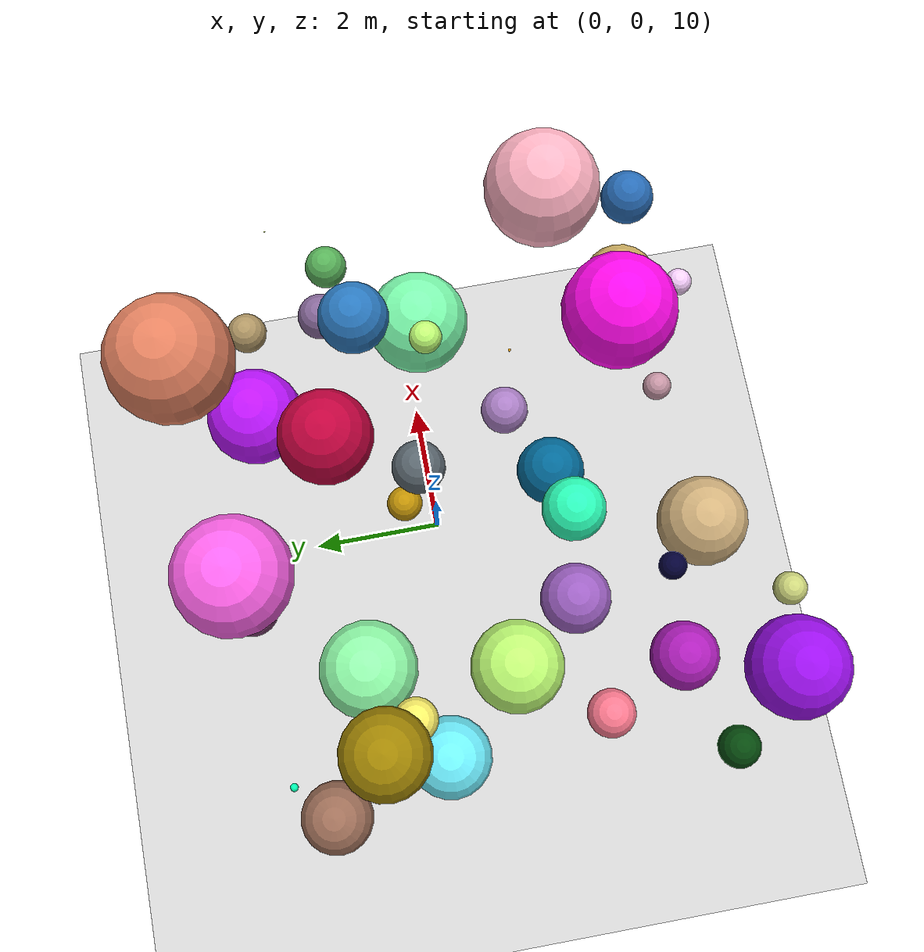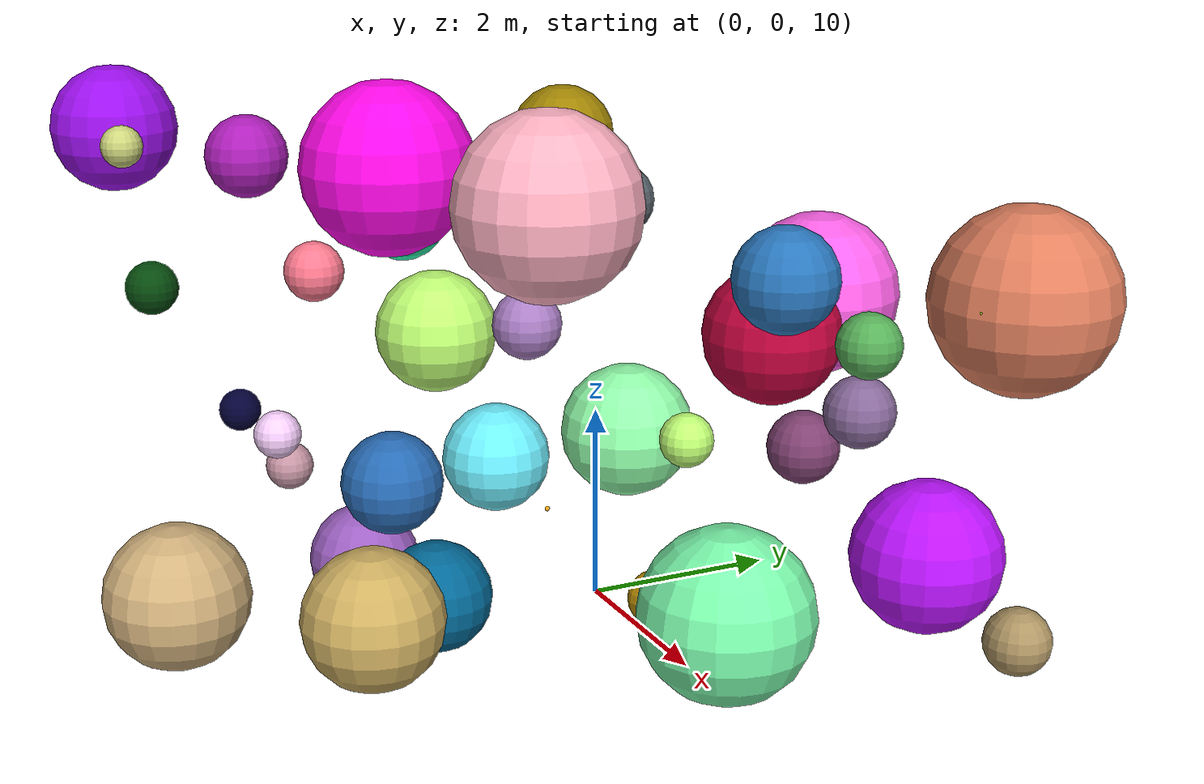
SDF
<sdf version="1.6">
 <world name="default">
  <model name="ball_32">
   <allow_auto_disable>0</allow_auto_disable>
   <link name="link">
    <collision name="collision">
     <geometry><sphere><radius>0.707745540641</radius></sphere></geometry>
     <max_contacts>20</max_contacts>
     <surface>
      <contact><ode><max_vel>10.0</max_vel></ode></contact>
      <bounce><threshold>0.0</threshold><restitution_coefficient>1.0</restitution_coefficient></bounce>
     </surface>
    </collision>
    <visual name="visual">
     <geometry><sphere><radius>0.707745540641</radius></sphere></geometry>
     <material>
      <diffuse>0.745098 0.00392157 0.235294 1</diffuse>
      <ambient>0.745098 0.00392157 0.235294 1</ambient>
     </material>
     <transparency>0.0</transparency>
    </visual>
    <inertial>
     <mass>0.758850604483</mass>
     <inertia>
      <ixz>0.0</ixz>
      <ixx>0.15204444548</ixx>
      <ixy>0.0</ixy>
      <izz>0.15204444548</izz>
      <iyy>0.15204444548</iyy>
      <iyz>0.0</iyz>
     </inertia>
    </inertial>
   </link>
   <pose>1.04656 1.43452 12.9102 0 -0 0</pose>
   <static>0</static>
  </model>
  <model name="ball_30">
   <allow_auto_disable>0</allow_auto_disable>
   <link name="link">
    <collision name="collision">
     <geometry><sphere><radius>0.553668750936</radius></sphere></geometry>
     <max_contacts>20</max_contacts>
     <surface>
      <contact><ode><max_vel>10.0</max_vel></ode></contact>
      <bounce><threshold>0.0</threshold><restitution_coefficient>1.0</restitution_coefficient></bounce>
     </surface>
    </collision>
    <visual name="visual">
     <geometry><sphere><radius>0.553668750936</radius></sphere></geometry>
     <material>
      <diffuse>0.00392157 0.403922 0.584314 1</diffuse>
      <ambient>0.00392157 0.403922 0.584314 1</ambient>
     </material>
     <transparency>0.0</transparency>
    </visual>
    <inertial>
     <mass>0.915317315301</mass>
     <inertia>
      <ixz>0.0</ixz>
      <ixx>0.112235874475</ixx>
      <ixy>0.0</ixy>
      <izz>0.112235874475</izz>
      <iyy>0.112235874475</iyy>
      <iyz>0.0</iyz>
     </inertia>
    </inertial>
   </link>
   <pose>0.479768 -1.97249 10.495 0 -0 0</pose>
   <static>0</static>
  </model>
  <model name="ball_31">
   <allow_auto_disable>0</allow_auto_disable>
   <link name="link">
    <collision name="collision">
     <geometry><sphere><radius>0.298899834104</radius></sphere></geometry>
     <max_contacts>20</max_contacts>
     <surface>
      <contact><ode><max_vel>10.0</max_vel></ode></contact>
      <bounce><threshold>0.0</threshold><restitution_coefficient>1.0</restitution_coefficient></bounce>
     </surface>
    </collision>
    <visual name="visual">
     <geometry><sphere><radius>0.298899834104</radius></sphere></geometry>
     <material>
      <diffuse>0.337255 0.682353 0.341176 1</diffuse>
      <ambient>0.337255 0.682353 0.341176 1</ambient>
     </material>
     <transparency>0.0</transparency>
    </visual>
    <inertial>
     <mass>0.997384573659</mass>
     <inertia>
      <ixz>0.0</ixz>
      <ixx>0.0356429782931</ixx>
      <ixy>0.0</ixy>
      <izz>0.0356429782931</izz>
      <iyy>0.0356429782931</iyy>
      <iyz>0.0</iyz>
     </inertia>
    </inertial>
   </link>
   <pose>3.39642 0.994318 13.4538 0 -0 0</pose>
   <static>0</static>
  </model>
  <model name="ball_18">
   <allow_auto_disable>0</allow_auto_disable>
   <link name="link">
    <collision name="collision">
     <geometry><sphere><radius>0.766750803271</radius></sphere></geometry>
     <max_contacts>20</max_contacts>
     <surface>
      <contact><ode><max_vel>10.0</max_vel></ode></contact>
      <bounce><threshold>0.0</threshold><restitution_coefficient>1.0</restitution_coefficient></bounce>
     </surface>
    </collision>
    <visual name="visual">
     <geometry><sphere><radius>0.766750803271</radius></sphere></geometry>
     <material><diffuse>1 0.0313725 0.909804 1</diffuse><ambient>1 0.0313725 0.909804 1</ambient></material>
     <transparency>0.0</transparency>
    </visual>
    <inertial>
     <mass>0.989809601818</mass>
     <inertia>
      <ixz>0.0</ixz>
      <ixx>0.232766315995</ixx>
      <ixy>0.0</ixy>
      <izz>0.232766315995</izz>
      <iyy>0.232766315995</iyy>
      <iyz>0.0</iyz>
     </inertia>
    </inertial>
   </link>
   <pose>1.46713 -2.72367 14.9956 0 -0 0</pose>
   <static>0</static>
  </model>
  <model name="ball_19">
   <allow_auto_disable>0</allow_auto_disable>
   <link name="link">
    <collision name="collision">
     <geometry><sphere><radius>0.0113179067498</radius></sphere></geometry>
     <max_contacts>20</max_contacts>
     <surface>
      <contact><ode><max_vel>10.0</max_vel></ode></contact>
      <bounce><threshold>0.0</threshold><restitution_coefficient>1.0</restitution_coefficient></bounce>
     </surface>
    </collision>
    <visual name="visual">
     <geometry><sphere><radius>0.0113179067498</radius></sphere></geometry>
     <material>
      <diffuse>0.690196 0.866667 0.0862745 1</diffuse>
      <ambient>0.690196 0.866667 0.0862745 1</ambient>
     </material>
     <transparency>0.0</transparency>
    </visual>
    <inertial>
     <mass>0.872707984319</mass>
     <inertia>
      <ixz>0.0</ixz>
      <ixx>4.47158163077e-05</ixx>
      <ixy>0.0</ixy>
      <izz>4.47158163077e-05</izz>
      <iyy>4.47158163077e-05</iyy>
      <iyz>0.0</iyz>
     </inertia>
    </inertial>
   </link>
   <pose>3.93957 1.75611 13.7899 0 -0 0</pose>
   <static>0</static>
  </model>
  <model name="ball_34">
   <allow_auto_disable>0</allow_auto_disable>
   <link name="link">
    <collision name="collision">
     <geometry><sphere><radius>0.68623115207</radius></sphere></geometry>
     <max_contacts>20</max_contacts>
     <surface>
      <contact><ode><max_vel>10.0</max_vel></ode></contact>
      <bounce><threshold>0.0</threshold><restitution_coefficient>1.0</restitution_coefficient></bounce>
     </surface>
    </collision>
    <visual name="visual">
     <geometry><sphere><radius>0.68623115207</radius></sphere></geometry>
     <material>
      <diffuse>0.745098 0.992157 0.45098 1</diffuse>
      <ambient>0.745098 0.992157 0.45098 1</ambient>
     </material>
     <transparency>0.0</transparency>
    </visual>
    <inertial>
     <mass>0.475504896456</mass>
     <inertia>
      <ixz>0.0</ixz>
      <ixx>0.0895686118346</ixx>
      <ixy>0.0</ixy>
      <izz>0.0895686118346</izz>
      <iyy>0.0895686118346</iyy>
      <iyz>0.0</iyz>
     </inertia>
    </inertial>
   </link>
   <pose>-2.65389 -0.717581 12.2684 0 -0 0</pose>
   <static>0</static>
  </model>
  <model name="ball_35">
   <allow_auto_disable>0</allow_auto_disable>
   <link name="link">
    <collision name="collision">
     <geometry><sphere><radius>0.781675663537</radius></sphere></geometry>
     <max_contacts>20</max_contacts>
     <surface>
      <contact><ode><max_vel>10.0</max_vel></ode></contact>
      <bounce><threshold>0.0</threshold><restitution_coefficient>1.0</restitution_coefficient></bounce>
     </surface>
    </collision>
    <visual name="visual">
     <geometry><sphere><radius>0.781675663537</radius></sphere></geometry>
     <material>
      <diffuse>0.737255 0.0745098 0.996078 1</diffuse>
      <ambient>0.737255 0.0745098 0.996078 1</ambient>
     </material>
     <transparency>0.0</transparency>
    </visual>
    <inertial>
     <mass>0.00483779798271</mass>
     <inertia>
      <ixz>0.0</ixz>
      <ixx>0.00118239042012</ixx>
      <ixy>0.0</ixy>
      <izz>0.00118239042012</izz>
      <iyy>0.00118239042012</iyy>
      <iyz>0.0</iyz>
     </inertia>
    </inertial>
   </link>
   <pose>2.18048 2.62688 10.7471 0 -0 0</pose>
   <static>0</static>
  </model>
  <model name="ball_36">
   <allow_auto_disable>0</allow_auto_disable>
   <link name="link">
    <collision name="collision">
     <geometry><sphere><radius>0.0218173294683</radius></sphere></geometry>
     <max_contacts>20</max_contacts>
     <surface>
      <contact><ode><max_vel>10.0</max_vel></ode></contact>
      <bounce><threshold>0.0</threshold><restitution_coefficient>1.0</restitution_coefficient></bounce>
     </surface>
    </collision>
    <visual name="visual">
     <geometry><sphere><radius>0.0218173294683</radius></sphere></geometry>
     <material><diffuse>1 0.670588 0.0588235 1</diffuse><ambient>1 0.670588 0.0588235 1</ambient></material>
     <transparency>0.0</transparency>
    </visual>
    <inertial>
     <mass>0.720488345056</mass>
     <inertia>
      <ixz>0.0</ixz>
      <ixx>0.000137179789248</ixx>
      <ixy>0.0</ixy>
      <izz>0.000137179789248</izz>
      <iyy>0.000137179789248</iyy>
      <iyz>0.0</iyz>
     </inertia>
    </inertial>
   </link>
   <pose>2.1719 -1.54456 11.9261 0 -0 0</pose>
   <static>0</static>
  </model>
  <model name="ball_37">
   <allow_auto_disable>0</allow_auto_disable>
   <link name="link">
    <collision name="collision">
     <geometry><sphere><radius>0.951231487496</radius></sphere></geometry>
     <max_contacts>20</max_contacts>
     <surface>
      <contact><ode><max_vel>10.0</max_vel></ode></contact>
      <bounce><threshold>0.0</threshold><restitution_coefficient>1.0</restitution_coefficient></bounce>
     </surface>
    </collision>
    <visual name="visual">
     <geometry><sphere><radius>0.951231487496</radius></sphere></geometry>
     <material>
      <diffuse>0.870588 0.494118 0.364706 1</diffuse>
      <ambient>0.870588 0.494118 0.364706 1</ambient>
     </material>
     <transparency>0.0</transparency>
    </visual>
    <inertial>
     <mass>0.00967082026447</mass>
     <inertia>
      <ixz>0.0</ixz>
      <ixx>0.00350022319765</ixx>
      <ixy>0.0</ixy>
      <izz>0.00350022319765</izz>
      <iyy>0.00350022319765</iyy>
      <iyz>0.0</iyz>
     </inertia>
    </inertial>
   </link>
   <pose>2.45555 3.42037 13.3695 0 -0 0</pose>
   <static>0</static>
  </model>
  <model name="ball_12">
   <allow_auto_disable>0</allow_auto_disable>
   <link name="link">
    <collision name="collision">
     <geometry><sphere><radius>0.425633663719</radius></sphere></geometry>
     <max_contacts>20</max_contacts>
     <surface>
      <contact><ode><max_vel>10.0</max_vel></ode></contact>
      <bounce><threshold>0.0</threshold><restitution_coefficient>1.0</restitution_coefficient></bounce>
     </surface>
    </collision>
    <visual name="visual">
     <geometry><sphere><radius>0.425633663719</radius></sphere></geometry>
     <material>
      <diffuse>0.494118 0.25098 0.443137 1</diffuse>
      <ambient>0.494118 0.25098 0.443137 1</ambient>
     </material>
     <transparency>0.0</transparency>
    </visual>
    <inertial>
     <mass>0.808717126526</mass>
     <inertia>
      <ixz>0.0</ixz>
      <ixx>0.0586041768797</ixx>
      <ixy>0.0</ixy>
      <izz>0.0586041768797</izz>
      <iyy>0.0586041768797</iyy>
      <iyz>0.0</iyz>
     </inertia>
    </inertial>
   </link>
   <pose>-0.958904 3.12574 10.85 0 -0 0</pose>
   <static>0</static>
  </model>
  <model name="ball_13">
   <allow_auto_disable>0</allow_auto_disable>
   <link name="link">
    <collision name="collision">
     <geometry><sphere><radius>0.604906266181</radius></sphere></geometry>
     <max_contacts>20</max_contacts>
     <surface>
      <contact><ode><max_vel>10.0</max_vel></ode></contact>
      <bounce><threshold>0.0</threshold><restitution_coefficient>1.0</restitution_coefficient></bounce>
     </surface>
    </collision>
    <visual name="visual">
     <geometry><sphere><radius>0.604906266181</radius></sphere></geometry>
     <material><diffuse>0.8 0.678431 0.376471 1</diffuse><ambient>0.8 0.678431 0.376471 1</ambient></material>
     <transparency>0.0</transparency>
    </visual>
    <inertial>
     <mass>0.781220154397</mass>
     <inertia>
      <ixz>0.0</ixz>
      <ixx>0.114343003805</ixx>
      <ixy>0.0</ixy>
      <izz>0.114343003805</izz>
      <iyy>0.114343003805</iyy>
      <iyz>0.0</iyz>
     </inertia>
    </inertial>
   </link>
   <pose>3.07758 -3.52532 11.5903 0 -0 0</pose>
   <static>0</static>
  </model>
  <model name="ball_10">
   <allow_auto_disable>0</allow_auto_disable>
   <link name="link">
    <collision name="collision">
     <geometry><sphere><radius>0.363124143104</radius></sphere></geometry>
     <max_contacts>20</max_contacts>
     <surface>
      <contact><ode><max_vel>10.0</max_vel></ode></contact>
      <bounce><threshold>0.0</threshold><restitution_coefficient>1.0</restitution_coefficient></bounce>
     </surface>
    </collision>
    <visual name="visual">
     <geometry><sphere><radius>0.363124143104</radius></sphere></geometry>
     <material>
      <diffuse>0.34902 0.396078 0.427451 1</diffuse>
      <ambient>0.34902 0.396078 0.427451 1</ambient>
     </material>
     <transparency>0.0</transparency>
    </visual>
    <inertial>
     <mass>0.599793873967</mass>
     <inertia>
      <ixz>0.0</ixz>
      <ixx>0.0316353225524</ixx>
      <ixy>0.0</ixy>
      <izz>0.0316353225524</izz>
      <iyy>0.0316353225524</iyy>
      <iyz>0.0</iyz>
     </inertia>
    </inertial>
   </link>
   <pose>0.0603183 0.205541 14.2 0 -0 0</pose>
   <static>0</static>
  </model>
  <model name="ball_11">
   <allow_auto_disable>0</allow_auto_disable>
   <link name="link">
    <collision name="collision">
     <geometry><sphere><radius>0.195531247248</radius></sphere></geometry>
     <max_contacts>20</max_contacts>
     <surface>
      <contact><ode><max_vel>10.0</max_vel></ode></contact>
      <bounce><threshold>0.0</threshold><restitution_coefficient>1.0</restitution_coefficient></bounce>
     </surface>
    </collision>
    <visual name="visual">
     <geometry><sphere><radius>0.195531247248</radius></sphere></geometry>
     <material>
      <diffuse>0.964706 0.807843 0.988235 1</diffuse>
      <ambient>0.964706 0.807843 0.988235 1</ambient>
     </material>
     <transparency>0.0</transparency>
    </visual>
    <inertial>
     <mass>0.889700937029</mass>
     <inertia>
      <ixz>0.0</ixz>
      <ixx>0.0136061852732</ixx>
      <ixy>0.0</ixy>
      <izz>0.0136061852732</izz>
      <iyy>0.0136061852732</iyy>
      <iyz>0.0</iyz>
     </inertia>
    </inertial>
   </link>
   <pose>2.39805 -4.0673 13.0602 0 -0 0</pose>
   <static>0</static>
  </model>
  <model name="ball_16">
   <allow_auto_disable>0</allow_auto_disable>
   <link name="link">
    <collision name="collision">
     <geometry><sphere><radius>0.783326667038</radius></sphere></geometry>
     <max_contacts>20</max_contacts>
     <surface>
      <contact><ode><max_vel>10.0</max_vel></ode></contact>
      <bounce><threshold>0.0</threshold><restitution_coefficient>1.0</restitution_coefficient></bounce>
     </surface>
    </collision>
    <visual name="visual">
     <geometry><sphere><radius>0.783326667038</radius></sphere></geometry>
     <material>
      <diffuse>0.992157 0.690196 0.752941 1</diffuse>
      <ambient>0.992157 0.690196 0.752941 1</ambient>
     </material>
     <transparency>0.0</transparency>
    </visual>
    <inertial>
     <mass>0.771785074521</mass>
     <inertia>
      <ixz>0.0</ixz>
      <ixx>0.189427134693</ixx>
      <ixy>0.0</ixy>
      <izz>0.189427134693</izz>
      <iyy>0.189427134693</iyy>
      <iyz>0.0</iyz>
     </inertia>
    </inertial>
   </link>
   <pose>3.35188 -2.0694 14.9625 0 -0 0</pose>
   <static>0</static>
  </model>
  <model name="ball_17">
   <allow_auto_disable>0</allow_auto_disable>
   <link name="link">
    <collision name="collision">
     <geometry><sphere><radius>0.304169624769</radius></sphere></geometry>
     <max_contacts>20</max_contacts>
     <surface>
      <contact><ode><max_vel>10.0</max_vel></ode></contact>
      <bounce><threshold>0.0</threshold><restitution_coefficient>1.0</restitution_coefficient></bounce>
     </surface>
    </collision>
    <visual name="visual">
     <geometry><sphere><radius>0.304169624769</radius></sphere></geometry>
     <material>
      <diffuse>0.0196078 0.282353 0.0509804 1</diffuse>
      <ambient>0.0196078 0.282353 0.0509804 1</ambient>
     </material>
     <transparency>0.0</transparency>
    </visual>
    <inertial>
     <mass>0.925369174399</mass>
     <inertia>
      <ixz>0.0</ixz>
      <ixx>0.0342457517162</ixx>
      <ixy>0.0</ixy>
      <izz>0.0342457517162</izz>
      <iyy>0.0342457517162</iyy>
      <iyz>0.0</iyz>
     </inertia>
    </inertial>
   </link>
   <pose>-4.32468 -3.51604 12.6816 0 -0 0</pose>
   <static>0</static>
  </model>
  <model name="ball_14">
   <allow_auto_disable>0</allow_auto_disable>
   <link name="link">
    <collision name="collision">
     <geometry><sphere><radius>0.294155782866</radius></sphere></geometry>
     <max_contacts>20</max_contacts>
     <surface>
      <contact><ode><max_vel>10.0</max_vel></ode></contact>
      <bounce><threshold>0.0</threshold><restitution_coefficient>1.0</restitution_coefficient></bounce>
     </surface>
    </collision>
    <visual name="visual">
     <geometry><sphere><radius>0.294155782866</radius></sphere></geometry>
     <material>
      <diffuse>0.74902 0.564706 0.0196078 1</diffuse>
      <ambient>0.74902 0.564706 0.0196078 1</ambient>
     </material>
     <transparency>0.0</transparency>
    </visual>
    <inertial>
     <mass>0.74006121595</mass>
     <inertia>
      <ixz>0.0</ixz>
      <ixx>0.0256142956279</ixx>
      <ixy>0.0</ixy>
      <izz>0.0256142956279</izz>
      <iyy>0.0256142956279</iyy>
      <iyz>0.0</iyz>
     </inertia>
    </inertial>
   </link>
   <pose>0.46274 0.473792 10.0141 0 -0 0</pose>
   <static>0</static>
  </model>
  <model name="ball_15">
   <allow_auto_disable>0</allow_auto_disable>
   <link name="link">
    <collision name="collision">
     <geometry><sphere><radius>0.81893610741</radius></sphere></geometry>
     <max_contacts>20</max_contacts>
     <surface>
      <contact><ode><max_vel>10.0</max_vel></ode></contact>
      <bounce><threshold>0.0</threshold><restitution_coefficient>1.0</restitution_coefficient></bounce>
     </surface>
    </collision>
    <visual name="visual">
     <geometry><sphere><radius>0.81893610741</radius></sphere></geometry>
     <material>
      <diffuse>0.478431 0.976471 0.670588 1</diffuse>
      <ambient>0.478431 0.976471 0.670588 1</ambient>
     </material>
     <transparency>0.0</transparency>
    </visual>
    <inertial>
     <mass>0.406292381687</mass>
     <inertia>
      <ixz>0.0</ixz>
      <ixx>0.108993025972</ixx>
      <ixy>0.0</ixy>
      <izz>0.108993025972</izz>
      <iyy>0.108993025972</iyy>
      <iyz>0.0</iyz>
     </inertia>
    </inertial>
   </link>
   <pose>3.18564 -0.252698 11.0565 0 -0 0</pose>
   <static>0</static>
  </model>
  <model name="ball">
   <allow_auto_disable>0</allow_auto_disable>
   <link name="link">
    <collision name="collision">
     <geometry><sphere><radius>0.214085200648</radius></sphere></geometry>
     <max_contacts>20</max_contacts>
     <surface>
      <contact><ode><max_vel>10.0</max_vel></ode></contact>
      <bounce><threshold>0.0</threshold><restitution_coefficient>1.0</restitution_coefficient></bounce>
     </surface>
    </collision>
    <visual name="visual">
     <geometry><sphere><radius>0.214085200648</radius></sphere></geometry>
     <material><diffuse>0.00784314 0 0.207843 1</diffuse><ambient>0.00784314 0 0.207843 1</ambient></material>
     <transparency>0.0</transparency>
    </visual>
    <inertial>
     <mass>0.53133053572</mass>
     <inertia>
      <ixz>0.0</ixz>
      <ixx>0.00974087700198</ixx>
      <ixy>0.0</ixy>
      <izz>0.00974087700198</izz>
      <iyy>0.00974087700198</iyy>
      <iyz>0.0</iyz>
     </inertia>
    </inertial>
   </link>
   <pose>-1.59323 -3.29644 11.997 0 -0 0</pose>
   <static>0</static>
  </model>
  <model name="ball_38">
   <allow_auto_disable>0</allow_auto_disable>
   <link name="link">
    <collision name="collision">
     <geometry><sphere><radius>0.0638270277006</radius></sphere></geometry>
     <max_contacts>20</max_contacts>
     <surface>
      <contact><ode><max_vel>10.0</max_vel></ode></contact>
      <bounce><threshold>0.0</threshold><restitution_coefficient>1.0</restitution_coefficient></bounce>
     </surface>
    </collision>
    <visual name="visual">
     <geometry><sphere><radius>0.0638270277006</radius></sphere></geometry>
     <material><diffuse>0 0.984314 0.690196 1</diffuse><ambient>0 0.984314 0.690196 1</ambient></material>
     <transparency>0.0</transparency>
    </visual>
    <inertial>
     <mass>0.571539245131</mass>
     <inertia>
      <ixz>0.0</ixz>
      <ixx>0.000931355083849</ixx>
      <ixy>0.0</ixy>
      <izz>0.000931355083849</izz>
      <iyy>0.000931355083849</iyy>
      <iyz>0.0</iyz>
     </inertia>
    </inertial>
   </link>
   <pose>-3.76403 2.91008 10.7397 0 -0 0</pose>
   <static>0</static>
  </model>
  <model name="ball_39">
   <allow_auto_disable>0</allow_auto_disable>
   <link name="link">
    <collision name="collision">
     <geometry><sphere><radius>0.661607616969</radius></sphere></geometry>
     <max_contacts>20</max_contacts>
     <surface>
      <contact><ode><max_vel>10.0</max_vel></ode></contact>
      <bounce><threshold>0.0</threshold><restitution_coefficient>1.0</restitution_coefficient></bounce>
     </surface>
    </collision>
    <visual name="visual">
     <geometry><sphere><radius>0.661607616969</radius></sphere></geometry>
     <material>
      <diffuse>0.427451 0.929412 0.992157 1</diffuse>
      <ambient>0.427451 0.929412 0.992157 1</ambient>
     </material>
     <transparency>0.0</transparency>
    </visual>
    <inertial>
     <mass>0.103077905918</mass>
     <inertia>
      <ixz>0.0</ixz>
      <ixx>0.0180478956559</ixx>
      <ixy>0.0</ixy>
      <izz>0.0180478956559</izz>
      <iyy>0.0180478956559</iyy>
      <iyz>0.0</iyz>
     </inertia>
    </inertial>
   </link>
   <pose>-3.7508 0.462049 10.241 0 -0 0</pose>
   <static>0</static>
  </model>
  <model name="ball_8">
   <allow_auto_disable>0</allow_auto_disable>
   <link name="link">
    <collision name="collision">
     <geometry><sphere><radius>0.50037350864</radius></sphere></geometry>
     <max_contacts>20</max_contacts>
     <surface>
      <contact><ode><max_vel>10.0</max_vel></ode></contact>
      <bounce><threshold>0.0</threshold><restitution_coefficient>1.0</restitution_coefficient></bounce>
     </surface>
    </collision>
    <visual name="visual">
     <geometry><sphere><radius>0.50037350864</radius></sphere></geometry>
     <material>
      <diffuse>0.611765 0.427451 0.341176 1</diffuse>
      <ambient>0.611765 0.427451 0.341176 1</ambient>
     </material>
     <transparency>0.0</transparency>
    </visual>
    <inertial>
     <mass>0.185154233442</mass>
     <inertia>
      <ixz>0.0</ixz>
      <ixx>0.0185430963588</ixx>
      <ixy>0.0</ixy>
      <izz>0.0185430963588</izz>
      <iyy>0.0185430963588</iyy>
      <iyz>0.0</iyz>
     </inertia>
    </inertial>
   </link>
   <pose>-4.25691 2.12582 12.9083 0 -0 0</pose>
   <static>0</static>
  </model>
  <model name="ball_9">
   <allow_auto_disable>0</allow_auto_disable>
   <link name="link">
    <collision name="collision">
     <geometry><sphere><radius>0.327212230582</radius></sphere></geometry>
     <max_contacts>20</max_contacts>
     <surface>
      <contact><ode><max_vel>10.0</max_vel></ode></contact>
      <bounce><threshold>0.0</threshold><restitution_coefficient>1.0</restitution_coefficient></bounce>
     </surface>
    </collision>
    <visual name="visual">
     <geometry><sphere><radius>0.327212230582</radius></sphere></geometry>
     <material>
      <diffuse>0.67451 0.576471 0.384314 1</diffuse>
      <ambient>0.67451 0.576471 0.384314 1</ambient>
     </material>
     <transparency>0.0</transparency>
    </visual>
    <inertial>
     <mass>0.023634241412</mass>
     <inertia>
      <ixz>0.0</ixz>
      <ixx>0.00101218690754</ixx>
      <ixy>0.0</ixy>
      <izz>0.00101218690754</izz>
      <iyy>0.00101218690754</iyy>
      <iyz>0.0</iyz>
     </inertia>
    </inertial>
   </link>
   <pose>3.72333 2.57698 10.4684 0 -0 0</pose>
   <static>0</static>
  </model>
  <model name="ball_33">
   <allow_auto_disable>0</allow_auto_disable>
   <link name="link">
    <collision name="collision">
     <geometry><sphere><radius>0.0637190642007</radius></sphere></geometry>
     <max_contacts>20</max_contacts>
     <surface>
      <contact><ode><max_vel>10.0</max_vel></ode></contact>
      <bounce><threshold>0.0</threshold><restitution_coefficient>1.0</restitution_coefficient></bounce>
     </surface>
    </collision>
    <visual name="visual">
     <geometry><sphere><radius>0.0637190642007</radius></sphere></geometry>
     <material>
      <diffuse>0.423529 0.478431 0.054902 1</diffuse>
      <ambient>0.423529 0.478431 0.054902 1</ambient>
     </material>
     <transparency>0.0</transparency>
    </visual>
    <inertial>
     <mass>0.858765808037</mass>
     <inertia>
      <ixz>0.0</ixz>
      <ixx>0.00139467659849</ixx>
      <ixy>0.0</ixy>
      <izz>0.00139467659849</izz>
      <iyy>0.00139467659849</iyy>
      <iyz>0.0</iyz>
     </inertia>
    </inertial>
   </link>
   <pose>-4.35425 1.93809 12.1859 0 -0 0</pose>
   <static>0</static>
  </model>
  <model name="ball_1">
   <allow_auto_disable>0</allow_auto_disable>
   <link name="link">
    <collision name="collision">
     <geometry><sphere><radius>0.77516801753</radius></sphere></geometry>
     <max_contacts>20</max_contacts>
     <surface>
      <contact><ode><max_vel>10.0</max_vel></ode></contact>
      <bounce><threshold>0.0</threshold><restitution_coefficient>1.0</restitution_coefficient></bounce>
     </surface>
    </collision>
    <visual name="visual">
     <geometry><sphere><radius>0.77516801753</radius></sphere></geometry>
     <material>
      <diffuse>0.564706 0.992157 0.662745 1</diffuse>
      <ambient>0.564706 0.992157 0.662745 1</ambient>
     </material>
     <transparency>0.0</transparency>
    </visual>
    <inertial>
     <mass>0.768266095816</mass>
     <inertia>
      <ixz>0.0</ixz>
      <ixx>0.184655969141</ixx>
      <ixy>0.0</ixy>
      <izz>0.184655969141</izz>
      <iyy>0.184655969141</iyy>
      <iyz>0.0</iyz>
     </inertia>
    </inertial>
   </link>
   <pose>-2.20853 1.47884 10.922 0 -0 0</pose>
   <static>0</static>
  </model>
  <model name="ball_2">
   <allow_auto_disable>0</allow_auto_disable>
   <link name="link">
    <collision name="collision">
     <geometry><sphere><radius>0.250646047301</radius></sphere></geometry>
     <max_contacts>20</max_contacts>
     <surface>
      <contact><ode><max_vel>10.0</max_vel></ode></contact>
      <bounce><threshold>0.0</threshold><restitution_coefficient>1.0</restitution_coefficient></bounce>
     </surface>
    </collision>
    <visual name="visual">
     <geometry><sphere><radius>0.250646047301</radius></sphere></geometry>
     <material>
      <diffuse>0.745098 0.992157 0.45098 1</diffuse>
      <ambient>0.745098 0.992157 0.45098 1</ambient>
     </material>
     <transparency>0.0</transparency>
    </visual>
    <inertial>
     <mass>0.394340775284</mass>
     <inertia>
      <ixz>0.0</ixz>
      <ixx>0.00990953777632</ixx>
      <ixy>0.0</ixy>
      <izz>0.00990953777632</izz>
      <iyy>0.00990953777632</iyy>
      <iyz>0.0</iyz>
     </inertia>
    </inertial>
   </link>
   <pose>2.43037 -0.275453 12.4713 0 -0 0</pose>
   <static>0</static>
  </model>
  <model name="ball_3">
   <allow_auto_disable>0</allow_auto_disable>
   <link name="link">
    <collision name="collision">
     <geometry><sphere><radius>0.437488474491</radius></sphere></geometry>
     <max_contacts>20</max_contacts>
     <surface>
      <contact><ode><max_vel>10.0</max_vel></ode></contact>
      <bounce><threshold>0.0</threshold><restitution_coefficient>1.0</restitution_coefficient></bounce>
     </surface>
    </collision>
    <visual name="visual">
     <geometry><sphere><radius>0.437488474491</radius></sphere></geometry>
     <material>
      <diffuse>0.164706 0.996078 0.717647 1</diffuse>
      <ambient>0.164706 0.996078 0.717647 1</ambient>
     </material>
     <transparency>0.0</transparency>
    </visual>
    <inertial>
     <mass>0.20659661661</mass>
     <inertia>
      <ixz>0.0</ixz>
      <ixx>0.0158167200743</ixx>
      <ixy>0.0</ixy>
      <izz>0.0158167200743</izz>
      <iyy>0.0158167200743</iyy>
      <iyz>0.0</iyz>
     </inertia>
    </inertial>
   </link>
   <pose>-0.838068 -1.74398 14.0298 0 -0 0</pose>
   <static>0</static>
  </model>
  <model name="ball_4">
   <allow_auto_disable>0</allow_auto_disable>
   <link name="link">
    <collision name="collision">
     <geometry><sphere><radius>0.505384984242</radius></sphere></geometry>
     <max_contacts>20</max_contacts>
     <surface>
      <contact><ode><max_vel>10.0</max_vel></ode></contact>
      <bounce><threshold>0.0</threshold><restitution_coefficient>1.0</restitution_coefficient></bounce>
     </surface>
    </collision>
    <visual name="visual">
     <geometry><sphere><radius>0.505384984242</radius></sphere></geometry>
     <material>
      <diffuse>0.160784 0.462745 0.733333 1</diffuse>
      <ambient>0.160784 0.462745 0.733333 1</ambient>
     </material>
     <transparency>0.0</transparency>
    </visual>
    <inertial>
     <mass>0.889320611324</mass>
     <inertia>
      <ixz>0.0</ixz>
      <ixx>0.0908579675509</ixx>
      <ixy>0.0</ixy>
      <izz>0.0908579675509</izz>
      <iyy>0.0908579675509</iyy>
      <iyz>0.0</iyz>
     </inertia>
    </inertial>
   </link>
   <pose>2.41759 0.727435 13.8519 0 -0 0</pose>
   <static>0</static>
  </model>
  <model name="ball_5">
   <allow_auto_disable>0</allow_auto_disable>
   <link name="link">
    <collision name="collision">
     <geometry><sphere><radius>0.741237502104</radius></sphere></geometry>
     <max_contacts>20</max_contacts>
     <surface>
      <contact><ode><max_vel>10.0</max_vel></ode></contact>
      <bounce><threshold>0.0</threshold><restitution_coefficient>1.0</restitution_coefficient></bounce>
     </surface>
    </collision>
    <visual name="visual">
     <geometry><sphere><radius>0.741237502104</radius></sphere></geometry>
     <material>
      <diffuse>0.811765 0.686275 0.482353 1</diffuse>
      <ambient>0.811765 0.686275 0.482353 1</ambient>
     </material>
     <transparency>0.0</transparency>
    </visual>
    <inertial>
     <mass>0.310581525611</mass>
     <inertia>
      <ixz>0.0</ixz>
      <ixx>0.0682575000337</ixx>
      <ixy>0.0</ixy>
      <izz>0.0682575000337</izz>
      <iyy>0.0682575000337</iyy>
      <iyz>0.0</iyz>
     </inertia>
    </inertial>
   </link>
   <pose>-0.776768 -4.24769 10.4171 0 -0 0</pose>
   <static>0</static>
  </model>
  <model name="ball_6">
   <allow_auto_disable>0</allow_auto_disable>
   <link name="link">
    <collision name="collision">
     <geometry><sphere><radius>0.900252299366</radius></sphere></geometry>
     <max_contacts>20</max_contacts>
     <surface>
      <contact><ode><max_vel>10.0</max_vel></ode></contact>
      <bounce><threshold>0.0</threshold><restitution_coefficient>1.0</restitution_coefficient></bounce>
     </surface>
    </collision>
    <visual name="visual">
     <geometry><sphere><radius>0.900252299366</radius></sphere></geometry>
     <material><diffuse>1 0.388235 0.913725 1</diffuse><ambient>1 0.388235 0.913725 1</ambient></material>
     <transparency>0.0</transparency>
    </visual>
    <inertial>
     <mass>0.283394826585</mass>
     <inertia>
      <ixz>0.0</ixz>
      <ixx>0.0918714112706</ixx>
      <ixy>0.0</ixy>
      <izz>0.0918714112706</izz>
      <iyy>0.0918714112706</iyy>
      <iyz>0.0</iyz>
     </inertia>
    </inertial>
   </link>
   <pose>-0.694286 3.07743 12.7611 0 -0 0</pose>
   <static>0</static>
  </model>
  <model name="ball_7">
   <allow_auto_disable>0</allow_auto_disable>
   <link name="link">
    <collision name="collision">
     <geometry><sphere><radius>0.39292619978</radius></sphere></geometry>
     <max_contacts>20</max_contacts>
     <surface>
      <contact><ode><max_vel>10.0</max_vel></ode></contact>
      <bounce><threshold>0.0</threshold><restitution_coefficient>1.0</restitution_coefficient></bounce>
     </surface>
    </collision>
    <visual name="visual">
     <geometry><sphere><radius>0.39292619978</radius></sphere></geometry>
     <material>
      <diffuse>0.152941 0.415686 0.701961 1</diffuse>
      <ambient>0.152941 0.415686 0.701961 1</ambient>
     </material>
     <transparency>0.0</transparency>
    </visual>
    <inertial>
     <mass>0.386359244217</mass>
     <inertia>
      <ixz>0.0</ixz>
      <ixx>0.0238601557937</ixx>
      <ixy>0.0</ixy>
      <izz>0.0238601557937</izz>
      <iyy>0.0238601557937</iyy>
      <iyz>0.0</iyz>
     </inertia>
    </inertial>
   </link>
   <pose>3.85195 -3.60686 13.0518 0 -0 0</pose>
   <static>0</static>
  </model>
  <model name="ball_23">
   <allow_auto_disable>0</allow_auto_disable>
   <link name="link">
    <collision name="collision">
     <geometry><sphere><radius>0.616079662619</radius></sphere></geometry>
     <max_contacts>20</max_contacts>
     <surface>
      <contact><ode><max_vel>10.0</max_vel></ode></contact>
      <bounce><threshold>0.0</threshold><restitution_coefficient>1.0</restitution_coefficient></bounce>
     </surface>
    </collision>
    <visual name="visual">
     <geometry><sphere><radius>0.616079662619</radius></sphere></geometry>
     <material>
      <diffuse>0.623529 0.513725 0.0117647 1</diffuse>
      <ambient>0.623529 0.513725 0.0117647 1</ambient>
     </material>
     <transparency>0.0</transparency>
    </visual>
    <inertial>
     <mass>0.681940403576</mass>
     <inertia>
      <ixz>0.0</ixz>
      <ixx>0.103533324281</ixx>
      <ixy>0.0</ixy>
      <izz>0.103533324281</izz>
      <iyy>0.103533324281</iyy>
      <iyz>0.0</iyz>
     </inertia>
    </inertial>
   </link>
   <pose>-3.55872 1.27835 14.1846 0 -0 0</pose>
   <static>0</static>
  </model>
  <model name="ball_22">
   <allow_auto_disable>0</allow_auto_disable>
   <link name="link">
    <collision name="collision">
     <geometry><sphere><radius>0.337013137305</radius></sphere></geometry>
     <max_contacts>20</max_contacts>
     <surface>
      <contact><ode><max_vel>10.0</max_vel></ode></contact>
      <bounce><threshold>0.0</threshold><restitution_coefficient>1.0</restitution_coefficient></bounce>
     </surface>
    </collision>
    <visual name="visual">
     <geometry><sphere><radius>0.337013137305</radius></sphere></geometry>
     <material>
      <diffuse>0.521569 0.403922 0.596078 1</diffuse>
      <ambient>0.521569 0.403922 0.596078 1</ambient>
     </material>
     <transparency>0.0</transparency>
    </visual>
    <inertial>
     <mass>0.617712610536</mass>
     <inertia>
      <ixz>0.0</ixz>
      <ixx>0.0280633892543</ixx>
      <ixy>0.0</ixy>
      <izz>0.0280633892543</izz>
      <iyy>0.0280633892543</iyy>
      <iyz>0.0</iyz>
     </inertia>
    </inertial>
   </link>
   <pose>2.95836 1.22185 12.6864 0 -0 0</pose>
   <static>0</static>
  </model>
  <model name="ball_21">
   <allow_auto_disable>0</allow_auto_disable>
   <link name="link">
    <collision name="collision">
     <geometry><sphere><radius>0.343980787153</radius></sphere></geometry>
     <max_contacts>20</max_contacts>
     <surface>
      <contact><ode><max_vel>10.0</max_vel></ode></contact>
      <bounce><threshold>0.0</threshold><restitution_coefficient>1.0</restitution_coefficient></bounce>
     </surface>
    </collision>
    <visual name="visual">
     <geometry><sphere><radius>0.343980787153</radius></sphere></geometry>
     <material>
      <diffuse>0.992157 0.47451 0.560784 1</diffuse>
      <ambient>0.992157 0.47451 0.560784 1</ambient>
     </material>
     <transparency>0.0</transparency>
    </visual>
    <inertial>
     <mass>0.324499272596</mass>
     <inertia>
      <ixz>0.0</ixz>
      <ixx>0.0153582626672</ixx>
      <ixy>0.0</ixy>
      <izz>0.0153582626672</izz>
      <iyy>0.0153582626672</iyy>
      <iyz>0.0</iyz>
     </inertia>
    </inertial>
   </link>
   <pose>-3.55727 -1.83635 12.8706 0 -0 0</pose>
   <static>0</static>
  </model>
  <model name="ball_20">
   <allow_auto_disable>0</allow_auto_disable>
   <link name="link">
    <collision name="collision">
     <geometry><sphere><radius>0.583782359399</radius></sphere></geometry>
     <max_contacts>20</max_contacts>
     <surface>
      <contact><ode><max_vel>10.0</max_vel></ode></contact>
      <bounce><threshold>0.0</threshold><restitution_coefficient>1.0</restitution_coefficient></bounce>
     </surface>
    </collision>
    <visual name="visual">
     <geometry><sphere><radius>0.583782359399</radius></sphere></geometry>
     <material>
      <diffuse>0.607843 0.372549 0.752941 1</diffuse>
      <ambient>0.607843 0.372549 0.752941 1</ambient>
     </material>
     <transparency>0.0</transparency>
    </visual>
    <inertial>
     <mass>0.371775173802</mass>
     <inertia>
      <ixz>0.0</ixz>
      <ixx>0.050680665787</ixx>
      <ixy>0.0</ixy>
      <izz>0.050680665787</izz>
      <iyy>0.050680665787</iyy>
      <iyz>0.0</iyz>
     </inertia>
    </inertial>
   </link>
   <pose>-1.61977 -2.00053 10.1373 0 -0 0</pose>
   <static>0</static>
  </model>
  <model name="ball_27">
   <allow_auto_disable>0</allow_auto_disable>
   <link name="link">
    <collision name="collision">
     <geometry><sphere><radius>0.665496033846</radius></sphere></geometry>
     <max_contacts>20</max_contacts>
     <surface>
      <contact><ode><max_vel>10.0</max_vel></ode></contact>
      <bounce><threshold>0.0</threshold><restitution_coefficient>1.0</restitution_coefficient></bounce>
     </surface>
    </collision>
    <visual name="visual">
     <geometry><sphere><radius>0.665496033846</radius></sphere></geometry>
     <material>
      <diffuse>0.603922 0.054902 0.917647 1</diffuse>
      <ambient>0.603922 0.054902 0.917647 1</ambient>
     </material>
     <transparency>0.0</transparency>
    </visual>
    <inertial>
     <mass>0.339829807406</mass>
     <inertia>
      <ixz>0.0</ixz>
      <ixx>0.060202205768</ixx>
      <ixy>0.0</ixy>
      <izz>0.060202205768</izz>
      <iyy>0.060202205768</iyy>
      <iyz>0.0</iyz>
     </inertia>
    </inertial>
   </link>
   <pose>-3.43178 -4.0097 14.6886 0 -0 0</pose>
   <static>0</static>
  </model>
  <model name="ball_26">
   <allow_auto_disable>0</allow_auto_disable>
   <link name="link">
    <collision name="collision">
     <geometry><sphere><radius>0.21134263918</radius></sphere></geometry>
     <max_contacts>20</max_contacts>
     <surface>
      <contact><ode><max_vel>10.0</max_vel></ode></contact>
      <bounce><threshold>0.0</threshold><restitution_coefficient>1.0</restitution_coefficient></bounce>
     </surface>
    </collision>
    <visual name="visual">
     <geometry><sphere><radius>0.21134263918</radius></sphere></geometry>
     <material>
      <diffuse>0.760784 0.572549 0.631373 1</diffuse>
      <ambient>0.760784 0.572549 0.631373 1</ambient>
     </material>
     <transparency>0.0</transparency>
    </visual>
    <inertial>
     <mass>0.830820759223</mass>
     <inertia>
      <ixz>0.0</ixz>
      <ixx>0.0148436800148</ixx>
      <ixy>0.0</ixy>
      <izz>0.0148436800148</izz>
      <iyy>0.0148436800148</iyy>
      <iyz>0.0</iyz>
     </inertia>
    </inertial>
   </link>
   <pose>1.09456 -3.58986 12.3015 0 -0 0</pose>
   <static>0</static>
  </model>
  <model name="ball_25">
   <allow_auto_disable>0</allow_auto_disable>
   <link name="link">
    <collision name="collision">
     <geometry><sphere><radius>0.333258943022</radius></sphere></geometry>
     <max_contacts>20</max_contacts>
     <surface>
      <contact><ode><max_vel>10.0</max_vel></ode></contact>
      <bounce><threshold>0.0</threshold><restitution_coefficient>1.0</restitution_coefficient></bounce>
     </surface>
    </collision>
    <visual name="visual">
     <geometry><sphere><radius>0.333258943022</radius></sphere></geometry>
     <material>
      <diffuse>0.658824 0.490196 0.760784 1</diffuse>
      <ambient>0.658824 0.490196 0.760784 1</ambient>
     </material>
     <transparency>0.0</transparency>
    </visual>
    <inertial>
     <mass>0.165285356854</mass>
     <inertia>
      <ixz>0.0</ixz>
      <ixx>0.00734273739162</ixx>
      <ixy>0.0</ixy>
      <izz>0.00734273739162</izz>
      <iyy>0.00734273739162</iyy>
      <iyz>0.0</iyz>
     </inertia>
    </inertial>
   </link>
   <pose>0.878021 -1.15812 13.2721 0 -0 0</pose>
   <static>0</static>
  </model>
  <model name="ball_24">
   <allow_auto_disable>0</allow_auto_disable>
   <link name="link">
    <collision name="collision">
     <geometry><sphere><radius>0.215640930103</radius></sphere></geometry>
     <max_contacts>20</max_contacts>
     <surface>
      <contact><ode><max_vel>10.0</max_vel></ode></contact>
      <bounce><threshold>0.0</threshold><restitution_coefficient>1.0</restitution_coefficient></bounce>
     </surface>
    </collision>
    <visual name="visual">
     <geometry><sphere><radius>0.215640930103</radius></sphere></geometry>
     <material>
      <diffuse>0.788235 0.819608 0.47451 1</diffuse>
      <ambient>0.788235 0.819608 0.47451 1</ambient>
     </material>
     <transparency>0.0</transparency>
    </visual>
    <inertial>
     <mass>0.703462465164</mass>
     <inertia>
      <ixz>0.0</ixz>
      <ixx>0.013084686258</ixx>
      <ixy>0.0</ixy>
      <izz>0.013084686258</izz>
      <iyy>0.013084686258</iyy>
      <iyz>0.0</iyz>
     </inertia>
    </inertial>
   </link>
   <pose>-2.44852 -4.15254 14.6563 0 -0 0</pose>
   <static>0</static>
  </model>
  <model name="ball_29">
   <allow_auto_disable>0</allow_auto_disable>
   <link name="link">
    <collision name="collision">
     <geometry><sphere><radius>0.447448753464</radius></sphere></geometry>
     <max_contacts>20</max_contacts>
     <surface>
      <contact><ode><max_vel>10.0</max_vel></ode></contact>
      <bounce><threshold>0.0</threshold><restitution_coefficient>1.0</restitution_coefficient></bounce>
     </surface>
    </collision>
    <visual name="visual">
     <geometry><sphere><radius>0.447448753464</radius></sphere></geometry>
     <material>
      <diffuse>0.67451 0.113725 0.721569 1</diffuse>
      <ambient>0.67451 0.113725 0.721569 1</ambient>
     </material>
     <transparency>0.0</transparency>
    </visual>
    <inertial>
     <mass>0.191483454809</mass>
     <inertia>
      <ixz>0.0</ixz>
      <ixx>0.0153347906347</ixx>
      <ixy>0.0</ixy>
      <izz>0.0153347906347</izz>
      <iyy>0.0153347906347</iyy>
      <iyz>0.0</iyz>
     </inertia>
    </inertial>
   </link>
   <pose>-3.02343 -2.70786 14.3505 0 -0 0</pose>
   <static>0</static>
  </model>
  <model name="ball_28">
   <allow_auto_disable>0</allow_auto_disable>
   <link name="link">
    <collision name="collision">
     <geometry><sphere><radius>0.323193343016</radius></sphere></geometry>
     <max_contacts>20</max_contacts>
     <surface>
      <contact><ode><max_vel>10.0</max_vel></ode></contact>
      <bounce><threshold>0.0</threshold><restitution_coefficient>1.0</restitution_coefficient></bounce>
     </surface>
    </collision>
    <visual name="visual">
     <geometry><sphere><radius>0.323193343016</radius></sphere></geometry>
     <material><diffuse>0.980392 0.933333 0.4 1</diffuse><ambient>0.980392 0.933333 0.4 1</ambient></material>
     <transparency>0.0</transparency>
    </visual>
    <inertial>
     <mass>0.0122398318647</mass>
     <inertia>
      <ixz>0.0</ixz>
      <ixx>0.000511399450446</ixx>
      <ixy>0.0</ixy>
      <izz>0.000511399450446</izz>
      <iyy>0.000511399450446</iyy>
      <iyz>0.0</iyz>
     </inertia>
    </inertial>
   </link>
   <pose>-3.14967 0.853192 12.5716 0 -0 0</pose>
   <static>0</static>
  </model>
  <include><static>1</static><uri>model://ground_plane</uri><name>ground_plane</name></include>
 </world>
</sdf>
